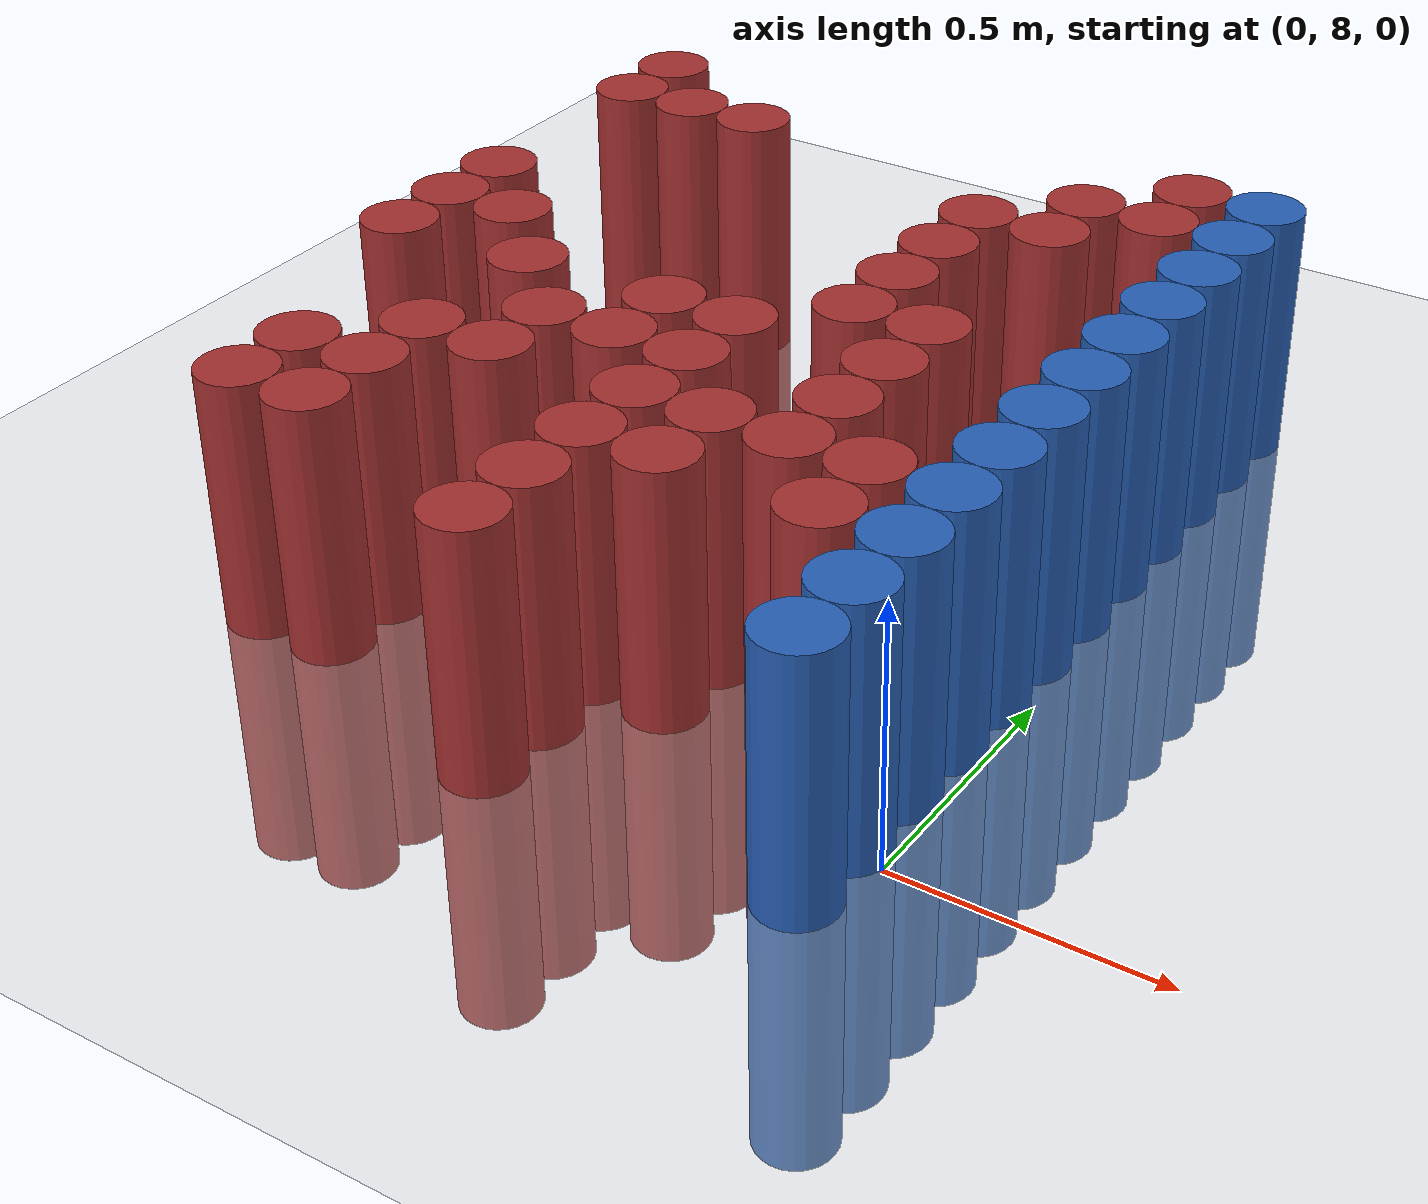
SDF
<sdf version="1.6">
 <world name="default">
  <model name="ground_plane">
   <static>1</static>
   <link name="link">
    <collision name="collision">
     <geometry><plane><normal>0 0 1</normal><size>100 100</size></plane></geometry>
     <surface><friction><ode><mu>100</mu><mu2>50</mu2></ode></friction></surface>
    </collision>
    <visual name="visual">
     <cast_shadows>0</cast_shadows>
     <geometry><plane><normal>0 0 1</normal><size>100 100</size></plane></geometry>
     <material>
      <script><uri>file://media/materials/scripts/gazebo.material</uri><name>Gazebo/Grey</name></script>
     </material>
    </visual>
   </link>
  </model>
  <model name="unit_cylinder_229">
   <static>1</static>
   <pose>-1.425000 8.625000 0.000000 0.000000 0.000000 0.000000</pose>
   <link name="link">
    <inertial>
     <mass>1</mass>
     <inertia><ixx>0.145833</ixx><ixy>0</ixy><ixz>0</ixz><iyy>0.145833</iyy><iyz>0</iyz><izz>0.125</izz></inertia>
    </inertial>
    <collision name="collision">
     <geometry><cylinder><radius>0.075000</radius><length>1</length></cylinder></geometry>
    </collision>
    <visual name="visual">
     <geometry><cylinder><radius>0.075000</radius><length>1</length></cylinder></geometry>
     <material>
      <ambient>0.648000 0.192000 0.192000 1</ambient>
      <diffuse>0.648000 0.192000 0.192000 1</diffuse>
     </material>
     <material>
      <script><name>Gazebo/Grey</name><uri>file://media/materials/scripts/gazebo.material</uri></script>
     </material>
    </visual>
   </link>
  </model>
  <model name="unit_cylinder_230">
   <static>1</static>
   <pose>-1.425000 8.775000 0.000000 0.000000 0.000000 0.000000</pose>
   <link name="link">
    <inertial>
     <mass>1</mass>
     <inertia><ixx>0.145833</ixx><ixy>0</ixy><ixz>0</ixz><iyy>0.145833</iyy><iyz>0</iyz><izz>0.125</izz></inertia>
    </inertial>
    <collision name="collision">
     <geometry><cylinder><radius>0.075000</radius><length>1</length></cylinder></geometry>
    </collision>
    <visual name="visual">
     <geometry><cylinder><radius>0.075000</radius><length>1</length></cylinder></geometry>
     <material>
      <ambient>0.648000 0.192000 0.192000 1</ambient>
      <diffuse>0.648000 0.192000 0.192000 1</diffuse>
     </material>
     <material>
      <script><name>Gazebo/Grey</name><uri>file://media/materials/scripts/gazebo.material</uri></script>
     </material>
    </visual>
   </link>
  </model>
  <model name="unit_cylinder_231">
   <static>1</static>
   <pose>-1.425000 8.925000 0.000000 0.000000 0.000000 0.000000</pose>
   <link name="link">
    <inertial>
     <mass>1</mass>
     <inertia><ixx>0.145833</ixx><ixy>0</ixy><ixz>0</ixz><iyy>0.145833</iyy><iyz>0</iyz><izz>0.125</izz></inertia>
    </inertial>
    <collision name="collision">
     <geometry><cylinder><radius>0.075000</radius><length>1</length></cylinder></geometry>
    </collision>
    <visual name="visual">
     <geometry><cylinder><radius>0.075000</radius><length>1</length></cylinder></geometry>
     <material>
      <ambient>0.648000 0.192000 0.192000 1</ambient>
      <diffuse>0.648000 0.192000 0.192000 1</diffuse>
     </material>
     <material>
      <script><name>Gazebo/Grey</name><uri>file://media/materials/scripts/gazebo.material</uri></script>
     </material>
    </visual>
   </link>
  </model>
  <model name="unit_cylinder_232">
   <static>1</static>
   <pose>-1.425000 9.375000 0.000000 0.000000 0.000000 0.000000</pose>
   <link name="link">
    <inertial>
     <mass>1</mass>
     <inertia><ixx>0.145833</ixx><ixy>0</ixy><ixz>0</ixz><iyy>0.145833</iyy><iyz>0</iyz><izz>0.125</izz></inertia>
    </inertial>
    <collision name="collision">
     <geometry><cylinder><radius>0.075000</radius><length>1</length></cylinder></geometry>
    </collision>
    <visual name="visual">
     <geometry><cylinder><radius>0.075000</radius><length>1</length></cylinder></geometry>
     <material>
      <ambient>0.648000 0.192000 0.192000 1</ambient>
      <diffuse>0.648000 0.192000 0.192000 1</diffuse>
     </material>
     <material>
      <script><name>Gazebo/Grey</name><uri>file://media/materials/scripts/gazebo.material</uri></script>
     </material>
    </visual>
   </link>
  </model>
  <model name="unit_cylinder_233">
   <static>1</static>
   <pose>-1.425000 9.525000 0.000000 0.000000 0.000000 0.000000</pose>
   <link name="link">
    <inertial>
     <mass>1</mass>
     <inertia><ixx>0.145833</ixx><ixy>0</ixy><ixz>0</ixz><iyy>0.145833</iyy><iyz>0</iyz><izz>0.125</izz></inertia>
    </inertial>
    <collision name="collision">
     <geometry><cylinder><radius>0.075000</radius><length>1</length></cylinder></geometry>
    </collision>
    <visual name="visual">
     <geometry><cylinder><radius>0.075000</radius><length>1</length></cylinder></geometry>
     <material>
      <ambient>0.648000 0.192000 0.192000 1</ambient>
      <diffuse>0.648000 0.192000 0.192000 1</diffuse>
     </material>
     <material>
      <script><name>Gazebo/Grey</name><uri>file://media/materials/scripts/gazebo.material</uri></script>
     </material>
    </visual>
   </link>
  </model>
  <model name="unit_cylinder_244">
   <static>1</static>
   <pose>-1.275000 8.025000 0.000000 0.000000 0.000000 0.000000</pose>
   <link name="link">
    <inertial>
     <mass>1</mass>
     <inertia><ixx>0.145833</ixx><ixy>0</ixy><ixz>0</ixz><iyy>0.145833</iyy><iyz>0</iyz><izz>0.125</izz></inertia>
    </inertial>
    <collision name="collision">
     <geometry><cylinder><radius>0.075000</radius><length>1</length></cylinder></geometry>
    </collision>
    <visual name="visual">
     <geometry><cylinder><radius>0.075000</radius><length>1</length></cylinder></geometry>
     <material>
      <ambient>0.648000 0.192000 0.192000 1</ambient>
      <diffuse>0.648000 0.192000 0.192000 1</diffuse>
     </material>
     <material>
      <script><name>Gazebo/Grey</name><uri>file://media/materials/scripts/gazebo.material</uri></script>
     </material>
    </visual>
   </link>
  </model>
  <model name="unit_cylinder_245">
   <static>1</static>
   <pose>-1.275000 8.175000 0.000000 0.000000 0.000000 0.000000</pose>
   <link name="link">
    <inertial>
     <mass>1</mass>
     <inertia><ixx>0.145833</ixx><ixy>0</ixy><ixz>0</ixz><iyy>0.145833</iyy><iyz>0</iyz><izz>0.125</izz></inertia>
    </inertial>
    <collision name="collision">
     <geometry><cylinder><radius>0.075000</radius><length>1</length></cylinder></geometry>
    </collision>
    <visual name="visual">
     <geometry><cylinder><radius>0.075000</radius><length>1</length></cylinder></geometry>
     <material>
      <ambient>0.648000 0.192000 0.192000 1</ambient>
      <diffuse>0.648000 0.192000 0.192000 1</diffuse>
     </material>
     <material>
      <script><name>Gazebo/Grey</name><uri>file://media/materials/scripts/gazebo.material</uri></script>
     </material>
    </visual>
   </link>
  </model>
  <model name="unit_cylinder_246">
   <static>1</static>
   <pose>-1.275000 8.775000 0.000000 0.000000 0.000000 0.000000</pose>
   <link name="link">
    <inertial>
     <mass>1</mass>
     <inertia><ixx>0.145833</ixx><ixy>0</ixy><ixz>0</ixz><iyy>0.145833</iyy><iyz>0</iyz><izz>0.125</izz></inertia>
    </inertial>
    <collision name="collision">
     <geometry><cylinder><radius>0.075000</radius><length>1</length></cylinder></geometry>
    </collision>
    <visual name="visual">
     <geometry><cylinder><radius>0.075000</radius><length>1</length></cylinder></geometry>
     <material>
      <ambient>0.648000 0.192000 0.192000 1</ambient>
      <diffuse>0.648000 0.192000 0.192000 1</diffuse>
     </material>
     <material>
      <script><name>Gazebo/Grey</name><uri>file://media/materials/scripts/gazebo.material</uri></script>
     </material>
    </visual>
   </link>
  </model>
  <model name="unit_cylinder_247">
   <static>1</static>
   <pose>-1.275000 9.375000 0.000000 0.000000 0.000000 0.000000</pose>
   <link name="link">
    <inertial>
     <mass>1</mass>
     <inertia><ixx>0.145833</ixx><ixy>0</ixy><ixz>0</ixz><iyy>0.145833</iyy><iyz>0</iyz><izz>0.125</izz></inertia>
    </inertial>
    <collision name="collision">
     <geometry><cylinder><radius>0.075000</radius><length>1</length></cylinder></geometry>
    </collision>
    <visual name="visual">
     <geometry><cylinder><radius>0.075000</radius><length>1</length></cylinder></geometry>
     <material>
      <ambient>0.648000 0.192000 0.192000 1</ambient>
      <diffuse>0.648000 0.192000 0.192000 1</diffuse>
     </material>
     <material>
      <script><name>Gazebo/Grey</name><uri>file://media/materials/scripts/gazebo.material</uri></script>
     </material>
    </visual>
   </link>
  </model>
  <model name="unit_cylinder_262">
   <static>1</static>
   <pose>-1.125000 8.025000 0.000000 0.000000 0.000000 0.000000</pose>
   <link name="link">
    <inertial>
     <mass>1</mass>
     <inertia><ixx>0.145833</ixx><ixy>0</ixy><ixz>0</ixz><iyy>0.145833</iyy><iyz>0</iyz><izz>0.125</izz></inertia>
    </inertial>
    <collision name="collision">
     <geometry><cylinder><radius>0.075000</radius><length>1</length></cylinder></geometry>
    </collision>
    <visual name="visual">
     <geometry><cylinder><radius>0.075000</radius><length>1</length></cylinder></geometry>
     <material>
      <ambient>0.648000 0.192000 0.192000 1</ambient>
      <diffuse>0.648000 0.192000 0.192000 1</diffuse>
     </material>
     <material>
      <script><name>Gazebo/Grey</name><uri>file://media/materials/scripts/gazebo.material</uri></script>
     </material>
    </visual>
   </link>
  </model>
  <model name="unit_cylinder_263">
   <static>1</static>
   <pose>-1.125000 8.175000 0.000000 0.000000 0.000000 0.000000</pose>
   <link name="link">
    <inertial>
     <mass>1</mass>
     <inertia><ixx>0.145833</ixx><ixy>0</ixy><ixz>0</ixz><iyy>0.145833</iyy><iyz>0</iyz><izz>0.125</izz></inertia>
    </inertial>
    <collision name="collision">
     <geometry><cylinder><radius>0.075000</radius><length>1</length></cylinder></geometry>
    </collision>
    <visual name="visual">
     <geometry><cylinder><radius>0.075000</radius><length>1</length></cylinder></geometry>
     <material>
      <ambient>0.648000 0.192000 0.192000 1</ambient>
      <diffuse>0.648000 0.192000 0.192000 1</diffuse>
     </material>
     <material>
      <script><name>Gazebo/Grey</name><uri>file://media/materials/scripts/gazebo.material</uri></script>
     </material>
    </visual>
   </link>
  </model>
  <model name="unit_cylinder_264">
   <static>1</static>
   <pose>-1.125000 8.325000 0.000000 0.000000 0.000000 0.000000</pose>
   <link name="link">
    <inertial>
     <mass>1</mass>
     <inertia><ixx>0.145833</ixx><ixy>0</ixy><ixz>0</ixz><iyy>0.145833</iyy><iyz>0</iyz><izz>0.125</izz></inertia>
    </inertial>
    <collision name="collision">
     <geometry><cylinder><radius>0.075000</radius><length>1</length></cylinder></geometry>
    </collision>
    <visual name="visual">
     <geometry><cylinder><radius>0.075000</radius><length>1</length></cylinder></geometry>
     <material>
      <ambient>0.648000 0.192000 0.192000 1</ambient>
      <diffuse>0.648000 0.192000 0.192000 1</diffuse>
     </material>
     <material>
      <script><name>Gazebo/Grey</name><uri>file://media/materials/scripts/gazebo.material</uri></script>
     </material>
    </visual>
   </link>
  </model>
  <model name="unit_cylinder_265">
   <static>1</static>
   <pose>-1.125000 8.625000 0.000000 0.000000 0.000000 0.000000</pose>
   <link name="link">
    <inertial>
     <mass>1</mass>
     <inertia><ixx>0.145833</ixx><ixy>0</ixy><ixz>0</ixz><iyy>0.145833</iyy><iyz>0</iyz><izz>0.125</izz></inertia>
    </inertial>
    <collision name="collision">
     <geometry><cylinder><radius>0.075000</radius><length>1</length></cylinder></geometry>
    </collision>
    <visual name="visual">
     <geometry><cylinder><radius>0.075000</radius><length>1</length></cylinder></geometry>
     <material>
      <ambient>0.648000 0.192000 0.192000 1</ambient>
      <diffuse>0.648000 0.192000 0.192000 1</diffuse>
     </material>
     <material>
      <script><name>Gazebo/Grey</name><uri>file://media/materials/scripts/gazebo.material</uri></script>
     </material>
    </visual>
   </link>
  </model>
  <model name="unit_cylinder_266">
   <static>1</static>
   <pose>-1.125000 9.375000 0.000000 0.000000 0.000000 0.000000</pose>
   <link name="link">
    <inertial>
     <mass>1</mass>
     <inertia><ixx>0.145833</ixx><ixy>0</ixy><ixz>0</ixz><iyy>0.145833</iyy><iyz>0</iyz><izz>0.125</izz></inertia>
    </inertial>
    <collision name="collision">
     <geometry><cylinder><radius>0.075000</radius><length>1</length></cylinder></geometry>
    </collision>
    <visual name="visual">
     <geometry><cylinder><radius>0.075000</radius><length>1</length></cylinder></geometry>
     <material>
      <ambient>0.648000 0.192000 0.192000 1</ambient>
      <diffuse>0.648000 0.192000 0.192000 1</diffuse>
     </material>
     <material>
      <script><name>Gazebo/Grey</name><uri>file://media/materials/scripts/gazebo.material</uri></script>
     </material>
    </visual>
   </link>
  </model>
  <model name="unit_cylinder_277">
   <static>1</static>
   <pose>-0.975000 8.325000 0.000000 0.000000 0.000000 0.000000</pose>
   <link name="link">
    <inertial>
     <mass>1</mass>
     <inertia><ixx>0.145833</ixx><ixy>0</ixy><ixz>0</ixz><iyy>0.145833</iyy><iyz>0</iyz><izz>0.125</izz></inertia>
    </inertial>
    <collision name="collision">
     <geometry><cylinder><radius>0.075000</radius><length>1</length></cylinder></geometry>
    </collision>
    <visual name="visual">
     <geometry><cylinder><radius>0.075000</radius><length>1</length></cylinder></geometry>
     <material>
      <ambient>0.648000 0.192000 0.192000 1</ambient>
      <diffuse>0.648000 0.192000 0.192000 1</diffuse>
     </material>
     <material>
      <script><name>Gazebo/Grey</name><uri>file://media/materials/scripts/gazebo.material</uri></script>
     </material>
    </visual>
   </link>
  </model>
  <model name="unit_cylinder_278">
   <static>1</static>
   <pose>-0.975000 8.475000 0.000000 0.000000 0.000000 0.000000</pose>
   <link name="link">
    <inertial>
     <mass>1</mass>
     <inertia><ixx>0.145833</ixx><ixy>0</ixy><ixz>0</ixz><iyy>0.145833</iyy><iyz>0</iyz><izz>0.125</izz></inertia>
    </inertial>
    <collision name="collision">
     <geometry><cylinder><radius>0.075000</radius><length>1</length></cylinder></geometry>
    </collision>
    <visual name="visual">
     <geometry><cylinder><radius>0.075000</radius><length>1</length></cylinder></geometry>
     <material>
      <ambient>0.648000 0.192000 0.192000 1</ambient>
      <diffuse>0.648000 0.192000 0.192000 1</diffuse>
     </material>
     <material>
      <script><name>Gazebo/Grey</name><uri>file://media/materials/scripts/gazebo.material</uri></script>
     </material>
    </visual>
   </link>
  </model>
  <model name="unit_cylinder_284">
   <static>1</static>
   <pose>-0.825000 8.475000 0.000000 0.000000 0.000000 0.000000</pose>
   <link name="link">
    <inertial>
     <mass>1</mass>
     <inertia><ixx>0.145833</ixx><ixy>0</ixy><ixz>0</ixz><iyy>0.145833</iyy><iyz>0</iyz><izz>0.125</izz></inertia>
    </inertial>
    <collision name="collision">
     <geometry><cylinder><radius>0.075000</radius><length>1</length></cylinder></geometry>
    </collision>
    <visual name="visual">
     <geometry><cylinder><radius>0.075000</radius><length>1</length></cylinder></geometry>
     <material>
      <ambient>0.648000 0.192000 0.192000 1</ambient>
      <diffuse>0.648000 0.192000 0.192000 1</diffuse>
     </material>
     <material>
      <script><name>Gazebo/Grey</name><uri>file://media/materials/scripts/gazebo.material</uri></script>
     </material>
    </visual>
   </link>
  </model>
  <model name="unit_cylinder_285">
   <static>1</static>
   <pose>-0.825000 8.625000 0.000000 0.000000 0.000000 0.000000</pose>
   <link name="link">
    <inertial>
     <mass>1</mass>
     <inertia><ixx>0.145833</ixx><ixy>0</ixy><ixz>0</ixz><iyy>0.145833</iyy><iyz>0</iyz><izz>0.125</izz></inertia>
    </inertial>
    <collision name="collision">
     <geometry><cylinder><radius>0.075000</radius><length>1</length></cylinder></geometry>
    </collision>
    <visual name="visual">
     <geometry><cylinder><radius>0.075000</radius><length>1</length></cylinder></geometry>
     <material>
      <ambient>0.648000 0.192000 0.192000 1</ambient>
      <diffuse>0.648000 0.192000 0.192000 1</diffuse>
     </material>
     <material>
      <script><name>Gazebo/Grey</name><uri>file://media/materials/scripts/gazebo.material</uri></script>
     </material>
    </visual>
   </link>
  </model>
  <model name="unit_cylinder_289">
   <static>1</static>
   <pose>-0.675000 7.875000 0.000000 0.000000 0.000000 0.000000</pose>
   <link name="link">
    <inertial>
     <mass>1</mass>
     <inertia><ixx>0.145833</ixx><ixy>0</ixy><ixz>0</ixz><iyy>0.145833</iyy><iyz>0</iyz><izz>0.125</izz></inertia>
    </inertial>
    <collision name="collision">
     <geometry><cylinder><radius>0.075000</radius><length>1</length></cylinder></geometry>
    </collision>
    <visual name="visual">
     <geometry><cylinder><radius>0.075000</radius><length>1</length></cylinder></geometry>
     <material>
      <ambient>0.648000 0.192000 0.192000 1</ambient>
      <diffuse>0.648000 0.192000 0.192000 1</diffuse>
     </material>
     <material>
      <script><name>Gazebo/Grey</name><uri>file://media/materials/scripts/gazebo.material</uri></script>
     </material>
    </visual>
   </link>
  </model>
  <model name="unit_cylinder_290">
   <static>1</static>
   <pose>-0.675000 8.025000 0.000000 0.000000 0.000000 0.000000</pose>
   <link name="link">
    <inertial>
     <mass>1</mass>
     <inertia><ixx>0.145833</ixx><ixy>0</ixy><ixz>0</ixz><iyy>0.145833</iyy><iyz>0</iyz><izz>0.125</izz></inertia>
    </inertial>
    <collision name="collision">
     <geometry><cylinder><radius>0.075000</radius><length>1</length></cylinder></geometry>
    </collision>
    <visual name="visual">
     <geometry><cylinder><radius>0.075000</radius><length>1</length></cylinder></geometry>
     <material>
      <ambient>0.648000 0.192000 0.192000 1</ambient>
      <diffuse>0.648000 0.192000 0.192000 1</diffuse>
     </material>
     <material>
      <script><name>Gazebo/Grey</name><uri>file://media/materials/scripts/gazebo.material</uri></script>
     </material>
    </visual>
   </link>
  </model>
  <model name="unit_cylinder_291">
   <static>1</static>
   <pose>-0.675000 8.175000 0.000000 0.000000 0.000000 0.000000</pose>
   <link name="link">
    <inertial>
     <mass>1</mass>
     <inertia><ixx>0.145833</ixx><ixy>0</ixy><ixz>0</ixz><iyy>0.145833</iyy><iyz>0</iyz><izz>0.125</izz></inertia>
    </inertial>
    <collision name="collision">
     <geometry><cylinder><radius>0.075000</radius><length>1</length></cylinder></geometry>
    </collision>
    <visual name="visual">
     <geometry><cylinder><radius>0.075000</radius><length>1</length></cylinder></geometry>
     <material>
      <ambient>0.648000 0.192000 0.192000 1</ambient>
      <diffuse>0.648000 0.192000 0.192000 1</diffuse>
     </material>
     <material>
      <script><name>Gazebo/Grey</name><uri>file://media/materials/scripts/gazebo.material</uri></script>
     </material>
    </visual>
   </link>
  </model>
  <model name="unit_cylinder_292">
   <static>1</static>
   <pose>-0.675000 8.325000 0.000000 0.000000 0.000000 0.000000</pose>
   <link name="link">
    <inertial>
     <mass>1</mass>
     <inertia><ixx>0.145833</ixx><ixy>0</ixy><ixz>0</ixz><iyy>0.145833</iyy><iyz>0</iyz><izz>0.125</izz></inertia>
    </inertial>
    <collision name="collision">
     <geometry><cylinder><radius>0.075000</radius><length>1</length></cylinder></geometry>
    </collision>
    <visual name="visual">
     <geometry><cylinder><radius>0.075000</radius><length>1</length></cylinder></geometry>
     <material>
      <ambient>0.648000 0.192000 0.192000 1</ambient>
      <diffuse>0.648000 0.192000 0.192000 1</diffuse>
     </material>
     <material>
      <script><name>Gazebo/Grey</name><uri>file://media/materials/scripts/gazebo.material</uri></script>
     </material>
    </visual>
   </link>
  </model>
  <model name="unit_cylinder_293">
   <static>1</static>
   <pose>-0.675000 8.475000 0.000000 0.000000 0.000000 0.000000</pose>
   <link name="link">
    <inertial>
     <mass>1</mass>
     <inertia><ixx>0.145833</ixx><ixy>0</ixy><ixz>0</ixz><iyy>0.145833</iyy><iyz>0</iyz><izz>0.125</izz></inertia>
    </inertial>
    <collision name="collision">
     <geometry><cylinder><radius>0.075000</radius><length>1</length></cylinder></geometry>
    </collision>
    <visual name="visual">
     <geometry><cylinder><radius>0.075000</radius><length>1</length></cylinder></geometry>
     <material>
      <ambient>0.648000 0.192000 0.192000 1</ambient>
      <diffuse>0.648000 0.192000 0.192000 1</diffuse>
     </material>
     <material>
      <script><name>Gazebo/Grey</name><uri>file://media/materials/scripts/gazebo.material</uri></script>
     </material>
    </visual>
   </link>
  </model>
  <model name="unit_cylinder_294">
   <static>1</static>
   <pose>-0.675000 8.625000 0.000000 0.000000 0.000000 0.000000</pose>
   <link name="link">
    <inertial>
     <mass>1</mass>
     <inertia><ixx>0.145833</ixx><ixy>0</ixy><ixz>0</ixz><iyy>0.145833</iyy><iyz>0</iyz><izz>0.125</izz></inertia>
    </inertial>
    <collision name="collision">
     <geometry><cylinder><radius>0.075000</radius><length>1</length></cylinder></geometry>
    </collision>
    <visual name="visual">
     <geometry><cylinder><radius>0.075000</radius><length>1</length></cylinder></geometry>
     <material>
      <ambient>0.648000 0.192000 0.192000 1</ambient>
      <diffuse>0.648000 0.192000 0.192000 1</diffuse>
     </material>
     <material>
      <script><name>Gazebo/Grey</name><uri>file://media/materials/scripts/gazebo.material</uri></script>
     </material>
    </visual>
   </link>
  </model>
  <model name="unit_cylinder_299">
   <static>1</static>
   <pose>-0.525000 8.175000 0.000000 0.000000 0.000000 0.000000</pose>
   <link name="link">
    <inertial>
     <mass>1</mass>
     <inertia><ixx>0.145833</ixx><ixy>0</ixy><ixz>0</ixz><iyy>0.145833</iyy><iyz>0</iyz><izz>0.125</izz></inertia>
    </inertial>
    <collision name="collision">
     <geometry><cylinder><radius>0.075000</radius><length>1</length></cylinder></geometry>
    </collision>
    <visual name="visual">
     <geometry><cylinder><radius>0.075000</radius><length>1</length></cylinder></geometry>
     <material>
      <ambient>0.648000 0.192000 0.192000 1</ambient>
      <diffuse>0.648000 0.192000 0.192000 1</diffuse>
     </material>
     <material>
      <script><name>Gazebo/Grey</name><uri>file://media/materials/scripts/gazebo.material</uri></script>
     </material>
    </visual>
   </link>
  </model>
  <model name="unit_cylinder_300">
   <static>1</static>
   <pose>-0.525000 8.325000 0.000000 0.000000 0.000000 0.000000</pose>
   <link name="link">
    <inertial>
     <mass>1</mass>
     <inertia><ixx>0.145833</ixx><ixy>0</ixy><ixz>0</ixz><iyy>0.145833</iyy><iyz>0</iyz><izz>0.125</izz></inertia>
    </inertial>
    <collision name="collision">
     <geometry><cylinder><radius>0.075000</radius><length>1</length></cylinder></geometry>
    </collision>
    <visual name="visual">
     <geometry><cylinder><radius>0.075000</radius><length>1</length></cylinder></geometry>
     <material>
      <ambient>0.648000 0.192000 0.192000 1</ambient>
      <diffuse>0.648000 0.192000 0.192000 1</diffuse>
     </material>
     <material>
      <script><name>Gazebo/Grey</name><uri>file://media/materials/scripts/gazebo.material</uri></script>
     </material>
    </visual>
   </link>
  </model>
  <model name="unit_cylinder_301">
   <static>1</static>
   <pose>-0.525000 8.775000 0.000000 0.000000 0.000000 0.000000</pose>
   <link name="link">
    <inertial>
     <mass>1</mass>
     <inertia><ixx>0.145833</ixx><ixy>0</ixy><ixz>0</ixz><iyy>0.145833</iyy><iyz>0</iyz><izz>0.125</izz></inertia>
    </inertial>
    <collision name="collision">
     <geometry><cylinder><radius>0.075000</radius><length>1</length></cylinder></geometry>
    </collision>
    <visual name="visual">
     <geometry><cylinder><radius>0.075000</radius><length>1</length></cylinder></geometry>
     <material>
      <ambient>0.648000 0.192000 0.192000 1</ambient>
      <diffuse>0.648000 0.192000 0.192000 1</diffuse>
     </material>
     <material>
      <script><name>Gazebo/Grey</name><uri>file://media/materials/scripts/gazebo.material</uri></script>
     </material>
    </visual>
   </link>
  </model>
  <model name="unit_cylinder_302">
   <static>1</static>
   <pose>-0.525000 8.925000 0.000000 0.000000 0.000000 0.000000</pose>
   <link name="link">
    <inertial>
     <mass>1</mass>
     <inertia><ixx>0.145833</ixx><ixy>0</ixy><ixz>0</ixz><iyy>0.145833</iyy><iyz>0</iyz><izz>0.125</izz></inertia>
    </inertial>
    <collision name="collision">
     <geometry><cylinder><radius>0.075000</radius><length>1</length></cylinder></geometry>
    </collision>
    <visual name="visual">
     <geometry><cylinder><radius>0.075000</radius><length>1</length></cylinder></geometry>
     <material>
      <ambient>0.648000 0.192000 0.192000 1</ambient>
      <diffuse>0.648000 0.192000 0.192000 1</diffuse>
     </material>
     <material>
      <script><name>Gazebo/Grey</name><uri>file://media/materials/scripts/gazebo.material</uri></script>
     </material>
    </visual>
   </link>
  </model>
  <model name="unit_cylinder_303">
   <static>1</static>
   <pose>-0.525000 9.075000 0.000000 0.000000 0.000000 0.000000</pose>
   <link name="link">
    <inertial>
     <mass>1</mass>
     <inertia><ixx>0.145833</ixx><ixy>0</ixy><ixz>0</ixz><iyy>0.145833</iyy><iyz>0</iyz><izz>0.125</izz></inertia>
    </inertial>
    <collision name="collision">
     <geometry><cylinder><radius>0.075000</radius><length>1</length></cylinder></geometry>
    </collision>
    <visual name="visual">
     <geometry><cylinder><radius>0.075000</radius><length>1</length></cylinder></geometry>
     <material>
      <ambient>0.648000 0.192000 0.192000 1</ambient>
      <diffuse>0.648000 0.192000 0.192000 1</diffuse>
     </material>
     <material>
      <script><name>Gazebo/Grey</name><uri>file://media/materials/scripts/gazebo.material</uri></script>
     </material>
    </visual>
   </link>
  </model>
  <model name="unit_cylinder_304">
   <static>1</static>
   <pose>-0.525000 9.225000 0.000000 0.000000 0.000000 0.000000</pose>
   <link name="link">
    <inertial>
     <mass>1</mass>
     <inertia><ixx>0.145833</ixx><ixy>0</ixy><ixz>0</ixz><iyy>0.145833</iyy><iyz>0</iyz><izz>0.125</izz></inertia>
    </inertial>
    <collision name="collision">
     <geometry><cylinder><radius>0.075000</radius><length>1</length></cylinder></geometry>
    </collision>
    <visual name="visual">
     <geometry><cylinder><radius>0.075000</radius><length>1</length></cylinder></geometry>
     <material>
      <ambient>0.648000 0.192000 0.192000 1</ambient>
      <diffuse>0.648000 0.192000 0.192000 1</diffuse>
     </material>
     <material>
      <script><name>Gazebo/Grey</name><uri>file://media/materials/scripts/gazebo.material</uri></script>
     </material>
    </visual>
   </link>
  </model>
  <model name="unit_cylinder_309">
   <static>1</static>
   <pose>-0.375000 8.325000 0.000000 0.000000 0.000000 0.000000</pose>
   <link name="link">
    <inertial>
     <mass>1</mass>
     <inertia><ixx>0.145833</ixx><ixy>0</ixy><ixz>0</ixz><iyy>0.145833</iyy><iyz>0</iyz><izz>0.125</izz></inertia>
    </inertial>
    <collision name="collision">
     <geometry><cylinder><radius>0.075000</radius><length>1</length></cylinder></geometry>
    </collision>
    <visual name="visual">
     <geometry><cylinder><radius>0.075000</radius><length>1</length></cylinder></geometry>
     <material>
      <ambient>0.648000 0.192000 0.192000 1</ambient>
      <diffuse>0.648000 0.192000 0.192000 1</diffuse>
     </material>
     <material>
      <script><name>Gazebo/Grey</name><uri>file://media/materials/scripts/gazebo.material</uri></script>
     </material>
    </visual>
   </link>
  </model>
  <model name="unit_cylinder_310">
   <static>1</static>
   <pose>-0.375000 8.475000 0.000000 0.000000 0.000000 0.000000</pose>
   <link name="link">
    <inertial>
     <mass>1</mass>
     <inertia><ixx>0.145833</ixx><ixy>0</ixy><ixz>0</ixz><iyy>0.145833</iyy><iyz>0</iyz><izz>0.125</izz></inertia>
    </inertial>
    <collision name="collision">
     <geometry><cylinder><radius>0.075000</radius><length>1</length></cylinder></geometry>
    </collision>
    <visual name="visual">
     <geometry><cylinder><radius>0.075000</radius><length>1</length></cylinder></geometry>
     <material>
      <ambient>0.648000 0.192000 0.192000 1</ambient>
      <diffuse>0.648000 0.192000 0.192000 1</diffuse>
     </material>
     <material>
      <script><name>Gazebo/Grey</name><uri>file://media/materials/scripts/gazebo.material</uri></script>
     </material>
    </visual>
   </link>
  </model>
  <model name="unit_cylinder_311">
   <static>1</static>
   <pose>-0.375000 8.625000 0.000000 0.000000 0.000000 0.000000</pose>
   <link name="link">
    <inertial>
     <mass>1</mass>
     <inertia><ixx>0.145833</ixx><ixy>0</ixy><ixz>0</ixz><iyy>0.145833</iyy><iyz>0</iyz><izz>0.125</izz></inertia>
    </inertial>
    <collision name="collision">
     <geometry><cylinder><radius>0.075000</radius><length>1</length></cylinder></geometry>
    </collision>
    <visual name="visual">
     <geometry><cylinder><radius>0.075000</radius><length>1</length></cylinder></geometry>
     <material>
      <ambient>0.648000 0.192000 0.192000 1</ambient>
      <diffuse>0.648000 0.192000 0.192000 1</diffuse>
     </material>
     <material>
      <script><name>Gazebo/Grey</name><uri>file://media/materials/scripts/gazebo.material</uri></script>
     </material>
    </visual>
   </link>
  </model>
  <model name="unit_cylinder_312">
   <static>1</static>
   <pose>-0.375000 8.775000 0.000000 0.000000 0.000000 0.000000</pose>
   <link name="link">
    <inertial>
     <mass>1</mass>
     <inertia><ixx>0.145833</ixx><ixy>0</ixy><ixz>0</ixz><iyy>0.145833</iyy><iyz>0</iyz><izz>0.125</izz></inertia>
    </inertial>
    <collision name="collision">
     <geometry><cylinder><radius>0.075000</radius><length>1</length></cylinder></geometry>
    </collision>
    <visual name="visual">
     <geometry><cylinder><radius>0.075000</radius><length>1</length></cylinder></geometry>
     <material>
      <ambient>0.648000 0.192000 0.192000 1</ambient>
      <diffuse>0.648000 0.192000 0.192000 1</diffuse>
     </material>
     <material>
      <script><name>Gazebo/Grey</name><uri>file://media/materials/scripts/gazebo.material</uri></script>
     </material>
    </visual>
   </link>
  </model>
  <model name="unit_cylinder_313">
   <static>1</static>
   <pose>-0.375000 9.225000 0.000000 0.000000 0.000000 0.000000</pose>
   <link name="link">
    <inertial>
     <mass>1</mass>
     <inertia><ixx>0.145833</ixx><ixy>0</ixy><ixz>0</ixz><iyy>0.145833</iyy><iyz>0</iyz><izz>0.125</izz></inertia>
    </inertial>
    <collision name="collision">
     <geometry><cylinder><radius>0.075000</radius><length>1</length></cylinder></geometry>
    </collision>
    <visual name="visual">
     <geometry><cylinder><radius>0.075000</radius><length>1</length></cylinder></geometry>
     <material>
      <ambient>0.648000 0.192000 0.192000 1</ambient>
      <diffuse>0.648000 0.192000 0.192000 1</diffuse>
     </material>
     <material>
      <script><name>Gazebo/Grey</name><uri>file://media/materials/scripts/gazebo.material</uri></script>
     </material>
    </visual>
   </link>
  </model>
  <model name="unit_cylinder_314">
   <static>1</static>
   <pose>-0.375000 9.375000 0.000000 0.000000 0.000000 0.000000</pose>
   <link name="link">
    <inertial>
     <mass>1</mass>
     <inertia><ixx>0.145833</ixx><ixy>0</ixy><ixz>0</ixz><iyy>0.145833</iyy><iyz>0</iyz><izz>0.125</izz></inertia>
    </inertial>
    <collision name="collision">
     <geometry><cylinder><radius>0.075000</radius><length>1</length></cylinder></geometry>
    </collision>
    <visual name="visual">
     <geometry><cylinder><radius>0.075000</radius><length>1</length></cylinder></geometry>
     <material>
      <ambient>0.648000 0.192000 0.192000 1</ambient>
      <diffuse>0.648000 0.192000 0.192000 1</diffuse>
     </material>
     <material>
      <script><name>Gazebo/Grey</name><uri>file://media/materials/scripts/gazebo.material</uri></script>
     </material>
    </visual>
   </link>
  </model>
  <model name="unit_cylinder_329">
   <static>1</static>
   <pose>-0.225000 8.175000 0.000000 0.000000 0.000000 0.000000</pose>
   <link name="link">
    <inertial>
     <mass>1</mass>
     <inertia><ixx>0.145833</ixx><ixy>0</ixy><ixz>0</ixz><iyy>0.145833</iyy><iyz>0</iyz><izz>0.125</izz></inertia>
    </inertial>
    <collision name="collision">
     <geometry><cylinder><radius>0.075000</radius><length>1</length></cylinder></geometry>
    </collision>
    <visual name="visual">
     <geometry><cylinder><radius>0.075000</radius><length>1</length></cylinder></geometry>
     <material>
      <ambient>0.648000 0.192000 0.192000 1</ambient>
      <diffuse>0.648000 0.192000 0.192000 1</diffuse>
     </material>
     <material>
      <script><name>Gazebo/Grey</name><uri>file://media/materials/scripts/gazebo.material</uri></script>
     </material>
    </visual>
   </link>
  </model>
  <model name="unit_cylinder_330">
   <static>1</static>
   <pose>-0.225000 8.325000 0.000000 0.000000 0.000000 0.000000</pose>
   <link name="link">
    <inertial>
     <mass>1</mass>
     <inertia><ixx>0.145833</ixx><ixy>0</ixy><ixz>0</ixz><iyy>0.145833</iyy><iyz>0</iyz><izz>0.125</izz></inertia>
    </inertial>
    <collision name="collision">
     <geometry><cylinder><radius>0.075000</radius><length>1</length></cylinder></geometry>
    </collision>
    <visual name="visual">
     <geometry><cylinder><radius>0.075000</radius><length>1</length></cylinder></geometry>
     <material>
      <ambient>0.648000 0.192000 0.192000 1</ambient>
      <diffuse>0.648000 0.192000 0.192000 1</diffuse>
     </material>
     <material>
      <script><name>Gazebo/Grey</name><uri>file://media/materials/scripts/gazebo.material</uri></script>
     </material>
    </visual>
   </link>
  </model>
  <model name="unit_cylinder_331">
   <static>1</static>
   <pose>-0.225000 9.375000 0.000000 0.000000 0.000000 0.000000</pose>
   <link name="link">
    <inertial>
     <mass>1</mass>
     <inertia><ixx>0.145833</ixx><ixy>0</ixy><ixz>0</ixz><iyy>0.145833</iyy><iyz>0</iyz><izz>0.125</izz></inertia>
    </inertial>
    <collision name="collision">
     <geometry><cylinder><radius>0.075000</radius><length>1</length></cylinder></geometry>
    </collision>
    <visual name="visual">
     <geometry><cylinder><radius>0.075000</radius><length>1</length></cylinder></geometry>
     <material>
      <ambient>0.648000 0.192000 0.192000 1</ambient>
      <diffuse>0.648000 0.192000 0.192000 1</diffuse>
     </material>
     <material>
      <script><name>Gazebo/Grey</name><uri>file://media/materials/scripts/gazebo.material</uri></script>
     </material>
    </visual>
   </link>
  </model>
  <model name="unit_cylinder_332">
   <static>1</static>
   <pose>-0.225000 9.525000 0.000000 0.000000 0.000000 0.000000</pose>
   <link name="link">
    <inertial>
     <mass>1</mass>
     <inertia><ixx>0.145833</ixx><ixy>0</ixy><ixz>0</ixz><iyy>0.145833</iyy><iyz>0</iyz><izz>0.125</izz></inertia>
    </inertial>
    <collision name="collision">
     <geometry><cylinder><radius>0.075000</radius><length>1</length></cylinder></geometry>
    </collision>
    <visual name="visual">
     <geometry><cylinder><radius>0.075000</radius><length>1</length></cylinder></geometry>
     <material>
      <ambient>0.648000 0.192000 0.192000 1</ambient>
      <diffuse>0.648000 0.192000 0.192000 1</diffuse>
     </material>
     <material>
      <script><name>Gazebo/Grey</name><uri>file://media/materials/scripts/gazebo.material</uri></script>
     </material>
    </visual>
   </link>
  </model>
  <model name="unit_cylinder_351">
   <static>1</static>
   <pose>-0.075000 7.875000 0.000000 0.000000 0.000000 0.000000</pose>
   <link name="link">
    <inertial>
     <mass>1</mass>
     <inertia><ixx>0.145833</ixx><ixy>0</ixy><ixz>0</ixz><iyy>0.145833</iyy><iyz>0</iyz><izz>0.125</izz></inertia>
    </inertial>
    <collision name="collision">
     <geometry><cylinder><radius>0.075000</radius><length>1</length></cylinder></geometry>
    </collision>
    <visual name="visual">
     <geometry><cylinder><radius>0.075000</radius><length>1</length></cylinder></geometry>
     <material>
      <ambient>0.152000 0.379000 0.720000 1</ambient>
      <diffuse>0.152000 0.379000 0.720000 1</diffuse>
     </material>
     <material>
      <script><name>Gazebo/Grey</name><uri>file://media/materials/scripts/gazebo.material</uri></script>
     </material>
    </visual>
   </link>
  </model>
  <model name="unit_cylinder_352">
   <static>1</static>
   <pose>-0.075000 8.025000 0.000000 0.000000 0.000000 0.000000</pose>
   <link name="link">
    <inertial>
     <mass>1</mass>
     <inertia><ixx>0.145833</ixx><ixy>0</ixy><ixz>0</ixz><iyy>0.145833</iyy><iyz>0</iyz><izz>0.125</izz></inertia>
    </inertial>
    <collision name="collision">
     <geometry><cylinder><radius>0.075000</radius><length>1</length></cylinder></geometry>
    </collision>
    <visual name="visual">
     <geometry><cylinder><radius>0.075000</radius><length>1</length></cylinder></geometry>
     <material>
      <ambient>0.152000 0.379000 0.720000 1</ambient>
      <diffuse>0.152000 0.379000 0.720000 1</diffuse>
     </material>
     <material>
      <script><name>Gazebo/Grey</name><uri>file://media/materials/scripts/gazebo.material</uri></script>
     </material>
    </visual>
   </link>
  </model>
  <model name="unit_cylinder_353">
   <static>1</static>
   <pose>-0.075000 8.175000 0.000000 0.000000 0.000000 0.000000</pose>
   <link name="link">
    <inertial>
     <mass>1</mass>
     <inertia><ixx>0.145833</ixx><ixy>0</ixy><ixz>0</ixz><iyy>0.145833</iyy><iyz>0</iyz><izz>0.125</izz></inertia>
    </inertial>
    <collision name="collision">
     <geometry><cylinder><radius>0.075000</radius><length>1</length></cylinder></geometry>
    </collision>
    <visual name="visual">
     <geometry><cylinder><radius>0.075000</radius><length>1</length></cylinder></geometry>
     <material>
      <ambient>0.152000 0.379000 0.720000 1</ambient>
      <diffuse>0.152000 0.379000 0.720000 1</diffuse>
     </material>
     <material>
      <script><name>Gazebo/Grey</name><uri>file://media/materials/scripts/gazebo.material</uri></script>
     </material>
    </visual>
   </link>
  </model>
  <model name="unit_cylinder_354">
   <static>1</static>
   <pose>-0.075000 8.325000 0.000000 0.000000 0.000000 0.000000</pose>
   <link name="link">
    <inertial>
     <mass>1</mass>
     <inertia><ixx>0.145833</ixx><ixy>0</ixy><ixz>0</ixz><iyy>0.145833</iyy><iyz>0</iyz><izz>0.125</izz></inertia>
    </inertial>
    <collision name="collision">
     <geometry><cylinder><radius>0.075000</radius><length>1</length></cylinder></geometry>
    </collision>
    <visual name="visual">
     <geometry><cylinder><radius>0.075000</radius><length>1</length></cylinder></geometry>
     <material>
      <ambient>0.152000 0.379000 0.720000 1</ambient>
      <diffuse>0.152000 0.379000 0.720000 1</diffuse>
     </material>
     <material>
      <script><name>Gazebo/Grey</name><uri>file://media/materials/scripts/gazebo.material</uri></script>
     </material>
    </visual>
   </link>
  </model>
  <model name="unit_cylinder_355">
   <static>1</static>
   <pose>-0.075000 8.475000 0.000000 0.000000 0.000000 0.000000</pose>
   <link name="link">
    <inertial>
     <mass>1</mass>
     <inertia><ixx>0.145833</ixx><ixy>0</ixy><ixz>0</ixz><iyy>0.145833</iyy><iyz>0</iyz><izz>0.125</izz></inertia>
    </inertial>
    <collision name="collision">
     <geometry><cylinder><radius>0.075000</radius><length>1</length></cylinder></geometry>
    </collision>
    <visual name="visual">
     <geometry><cylinder><radius>0.075000</radius><length>1</length></cylinder></geometry>
     <material>
      <ambient>0.152000 0.379000 0.720000 1</ambient>
      <diffuse>0.152000 0.379000 0.720000 1</diffuse>
     </material>
     <material>
      <script><name>Gazebo/Grey</name><uri>file://media/materials/scripts/gazebo.material</uri></script>
     </material>
    </visual>
   </link>
  </model>
  <model name="unit_cylinder_356">
   <static>1</static>
   <pose>-0.075000 8.625000 0.000000 0.000000 0.000000 0.000000</pose>
   <link name="link">
    <inertial>
     <mass>1</mass>
     <inertia><ixx>0.145833</ixx><ixy>0</ixy><ixz>0</ixz><iyy>0.145833</iyy><iyz>0</iyz><izz>0.125</izz></inertia>
    </inertial>
    <collision name="collision">
     <geometry><cylinder><radius>0.075000</radius><length>1</length></cylinder></geometry>
    </collision>
    <visual name="visual">
     <geometry><cylinder><radius>0.075000</radius><length>1</length></cylinder></geometry>
     <material>
      <ambient>0.152000 0.379000 0.720000 1</ambient>
      <diffuse>0.152000 0.379000 0.720000 1</diffuse>
     </material>
     <material>
      <script><name>Gazebo/Grey</name><uri>file://media/materials/scripts/gazebo.material</uri></script>
     </material>
    </visual>
   </link>
  </model>
  <model name="unit_cylinder_357">
   <static>1</static>
   <pose>-0.075000 8.775000 0.000000 0.000000 0.000000 0.000000</pose>
   <link name="link">
    <inertial>
     <mass>1</mass>
     <inertia><ixx>0.145833</ixx><ixy>0</ixy><ixz>0</ixz><iyy>0.145833</iyy><iyz>0</iyz><izz>0.125</izz></inertia>
    </inertial>
    <collision name="collision">
     <geometry><cylinder><radius>0.075000</radius><length>1</length></cylinder></geometry>
    </collision>
    <visual name="visual">
     <geometry><cylinder><radius>0.075000</radius><length>1</length></cylinder></geometry>
     <material>
      <ambient>0.152000 0.379000 0.720000 1</ambient>
      <diffuse>0.152000 0.379000 0.720000 1</diffuse>
     </material>
     <material>
      <script><name>Gazebo/Grey</name><uri>file://media/materials/scripts/gazebo.material</uri></script>
     </material>
    </visual>
   </link>
  </model>
  <model name="unit_cylinder_358">
   <static>1</static>
   <pose>-0.075000 8.925000 0.000000 0.000000 0.000000 0.000000</pose>
   <link name="link">
    <inertial>
     <mass>1</mass>
     <inertia><ixx>0.145833</ixx><ixy>0</ixy><ixz>0</ixz><iyy>0.145833</iyy><iyz>0</iyz><izz>0.125</izz></inertia>
    </inertial>
    <collision name="collision">
     <geometry><cylinder><radius>0.075000</radius><length>1</length></cylinder></geometry>
    </collision>
    <visual name="visual">
     <geometry><cylinder><radius>0.075000</radius><length>1</length></cylinder></geometry>
     <material>
      <ambient>0.152000 0.379000 0.720000 1</ambient>
      <diffuse>0.152000 0.379000 0.720000 1</diffuse>
     </material>
     <material>
      <script><name>Gazebo/Grey</name><uri>file://media/materials/scripts/gazebo.material</uri></script>
     </material>
    </visual>
   </link>
  </model>
  <model name="unit_cylinder_359">
   <static>1</static>
   <pose>-0.075000 9.075000 0.000000 0.000000 0.000000 0.000000</pose>
   <link name="link">
    <inertial>
     <mass>1</mass>
     <inertia><ixx>0.145833</ixx><ixy>0</ixy><ixz>0</ixz><iyy>0.145833</iyy><iyz>0</iyz><izz>0.125</izz></inertia>
    </inertial>
    <collision name="collision">
     <geometry><cylinder><radius>0.075000</radius><length>1</length></cylinder></geometry>
    </collision>
    <visual name="visual">
     <geometry><cylinder><radius>0.075000</radius><length>1</length></cylinder></geometry>
     <material>
      <ambient>0.152000 0.379000 0.720000 1</ambient>
      <diffuse>0.152000 0.379000 0.720000 1</diffuse>
     </material>
     <material>
      <script><name>Gazebo/Grey</name><uri>file://media/materials/scripts/gazebo.material</uri></script>
     </material>
    </visual>
   </link>
  </model>
  <model name="unit_cylinder_360">
   <static>1</static>
   <pose>-0.075000 9.225000 0.000000 0.000000 0.000000 0.000000</pose>
   <link name="link">
    <inertial>
     <mass>1</mass>
     <inertia><ixx>0.145833</ixx><ixy>0</ixy><ixz>0</ixz><iyy>0.145833</iyy><iyz>0</iyz><izz>0.125</izz></inertia>
    </inertial>
    <collision name="collision">
     <geometry><cylinder><radius>0.075000</radius><length>1</length></cylinder></geometry>
    </collision>
    <visual name="visual">
     <geometry><cylinder><radius>0.075000</radius><length>1</length></cylinder></geometry>
     <material>
      <ambient>0.152000 0.379000 0.720000 1</ambient>
      <diffuse>0.152000 0.379000 0.720000 1</diffuse>
     </material>
     <material>
      <script><name>Gazebo/Grey</name><uri>file://media/materials/scripts/gazebo.material</uri></script>
     </material>
    </visual>
   </link>
  </model>
  <model name="unit_cylinder_361">
   <static>1</static>
   <pose>-0.075000 9.375000 0.000000 0.000000 0.000000 0.000000</pose>
   <link name="link">
    <inertial>
     <mass>1</mass>
     <inertia><ixx>0.145833</ixx><ixy>0</ixy><ixz>0</ixz><iyy>0.145833</iyy><iyz>0</iyz><izz>0.125</izz></inertia>
    </inertial>
    <collision name="collision">
     <geometry><cylinder><radius>0.075000</radius><length>1</length></cylinder></geometry>
    </collision>
    <visual name="visual">
     <geometry><cylinder><radius>0.075000</radius><length>1</length></cylinder></geometry>
     <material>
      <ambient>0.152000 0.379000 0.720000 1</ambient>
      <diffuse>0.152000 0.379000 0.720000 1</diffuse>
     </material>
     <material>
      <script><name>Gazebo/Grey</name><uri>file://media/materials/scripts/gazebo.material</uri></script>
     </material>
    </visual>
   </link>
  </model>
  <model name="unit_cylinder_362">
   <static>1</static>
   <pose>-0.075000 9.525000 0.000000 0.000000 0.000000 0.000000</pose>
   <link name="link">
    <inertial>
     <mass>1</mass>
     <inertia><ixx>0.145833</ixx><ixy>0</ixy><ixz>0</ixz><iyy>0.145833</iyy><iyz>0</iyz><izz>0.125</izz></inertia>
    </inertial>
    <collision name="collision">
     <geometry><cylinder><radius>0.075000</radius><length>1</length></cylinder></geometry>
    </collision>
    <visual name="visual">
     <geometry><cylinder><radius>0.075000</radius><length>1</length></cylinder></geometry>
     <material>
      <ambient>0.152000 0.379000 0.720000 1</ambient>
      <diffuse>0.152000 0.379000 0.720000 1</diffuse>
     </material>
     <material>
      <script><name>Gazebo/Grey</name><uri>file://media/materials/scripts/gazebo.material</uri></script>
     </material>
    </visual>
   </link>
  </model>
 </world>
</sdf>
